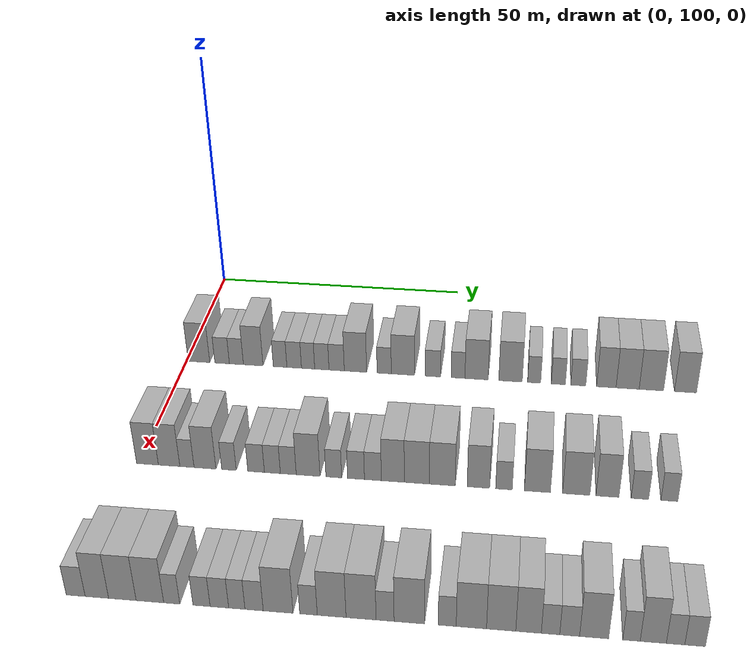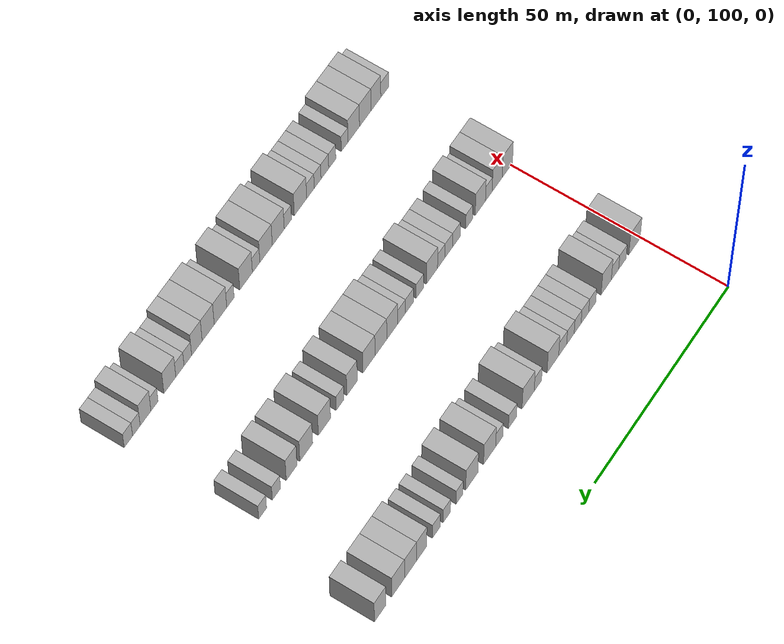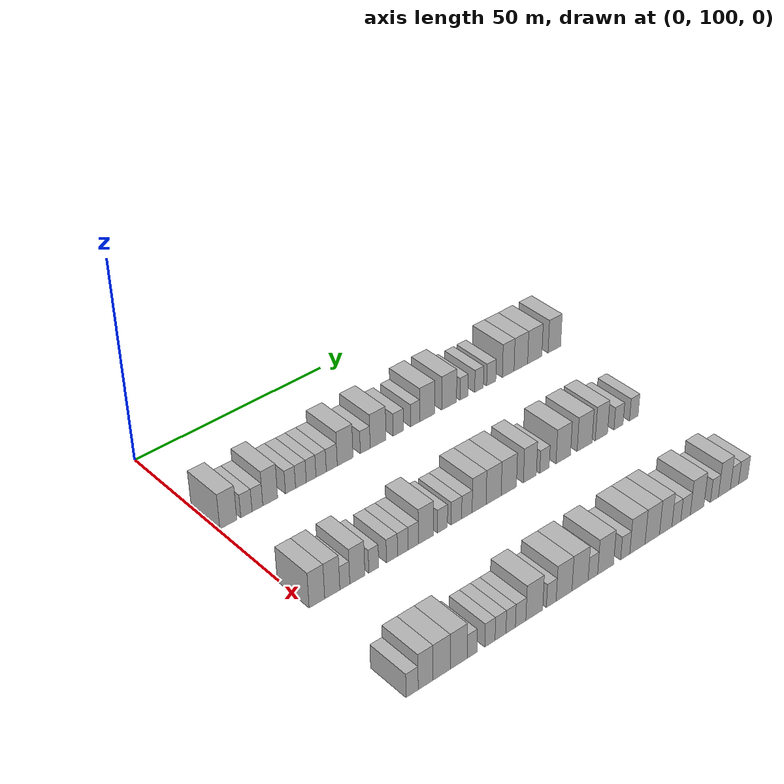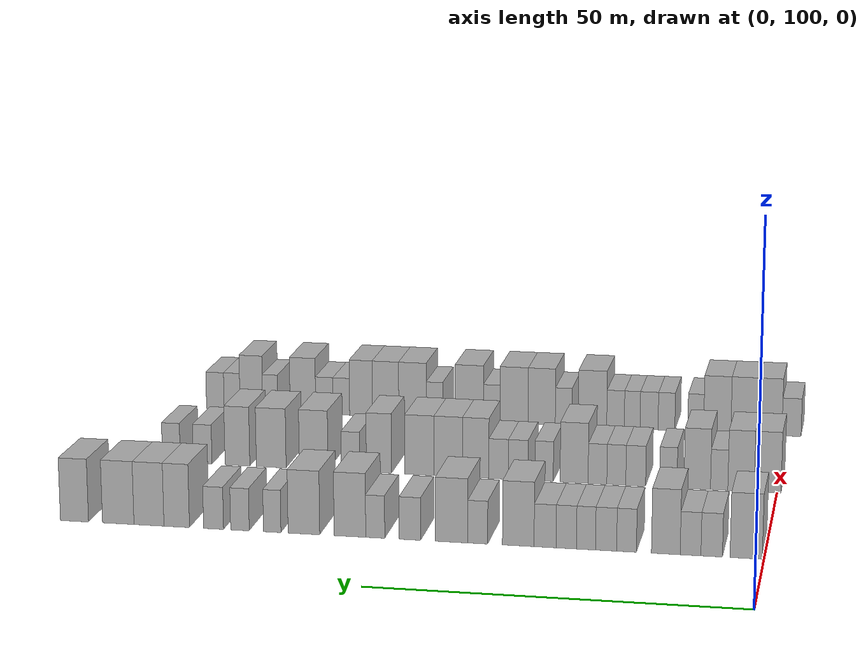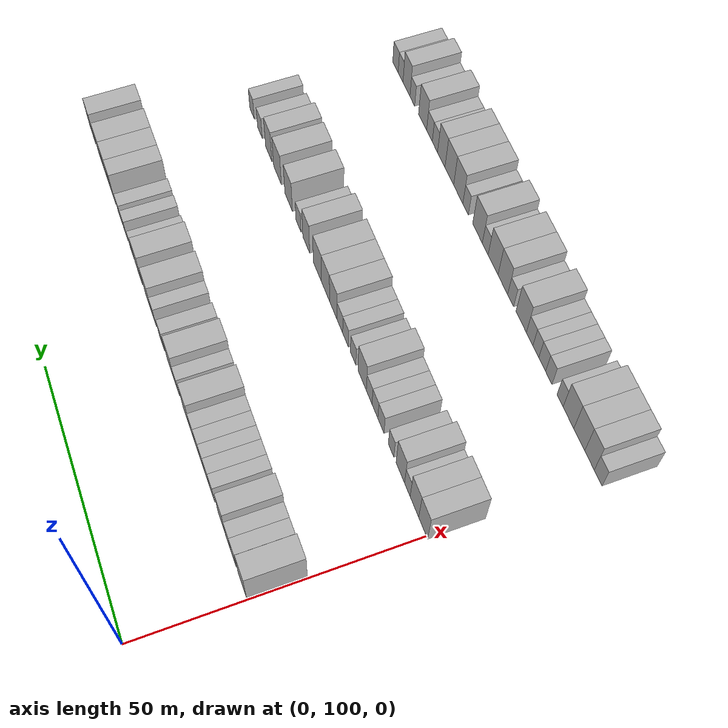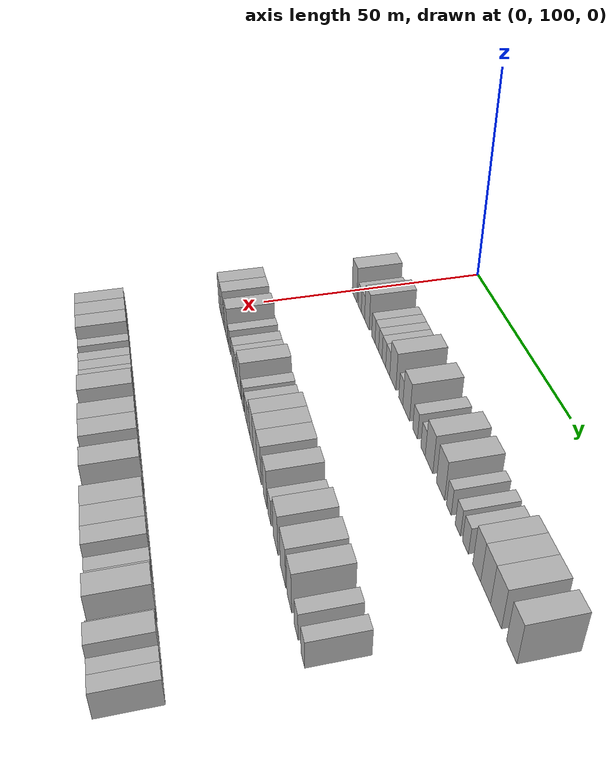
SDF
<sdf version="1.6">
 <world name="default">
  <model name="building_96">
   <static>1</static>
   <pose>25.0000 102.4165 0 0.000000 0.000000 0.000000</pose>
   <link name="link">
    <pose>0 0 4.50 0 0 0</pose>
    <collision name="collision"><geometry><box><size>10.0000 4.2398 9.0000</size></box></geometry></collision>
    <visual name="visual">
     <cast_shadows>0</cast_shadows>
     <geometry><box><size>10.0000 4.2398 9.0000</size></box></geometry>
     <material>
      <script>
       <uri>model://HANNAS_wall/materials/scripts</uri>
       <uri>model://HANNAS_wall/materials/textures</uri>
       <name>vrc/HANNAS_wall</name>
      </script>
     </material>
    </visual>
   </link>
  </model>
  <model name="building_97">
   <static>1</static>
   <pose>25.0000 106.9569 0 0.000000 0.000000 0.000000</pose>
   <link name="link">
    <pose>0 0 3.00 0 0 0</pose>
    <collision name="collision"><geometry><box><size>10.0000 2.8409 6.0000</size></box></geometry></collision>
    <visual name="visual">
     <cast_shadows>0</cast_shadows>
     <geometry><box><size>10.0000 2.8409 6.0000</size></box></geometry>
     <material>
      <script>
       <uri>model://HANNAS_wall/materials/scripts</uri>
       <uri>model://HANNAS_wall/materials/textures</uri>
       <name>vrc/HANNAS_wall</name>
      </script>
     </material>
    </visual>
   </link>
  </model>
  <model name="building_98">
   <static>1</static>
   <pose>25.0000 109.7510 0 0.000000 0.000000 0.000000</pose>
   <link name="link">
    <pose>0 0 3.00 0 0 0</pose>
    <collision name="collision"><geometry><box><size>10.0000 2.7475 6.0000</size></box></geometry></collision>
    <visual name="visual">
     <cast_shadows>0</cast_shadows>
     <geometry><box><size>10.0000 2.7475 6.0000</size></box></geometry>
     <material>
      <script>
       <uri>model://HANNAS_wall/materials/scripts</uri>
       <uri>model://HANNAS_wall/materials/textures</uri>
       <name>vrc/HANNAS_wall</name>
      </script>
     </material>
    </visual>
   </link>
  </model>
  <model name="building_99">
   <static>1</static>
   <pose>25.0000 113.0351 0 0.000000 0.000000 0.000000</pose>
   <link name="link">
    <pose>0 0 4.50 0 0 0</pose>
    <collision name="collision"><geometry><box><size>10.0000 3.8206 9.0000</size></box></geometry></collision>
    <visual name="visual">
     <cast_shadows>0</cast_shadows>
     <geometry><box><size>10.0000 3.8206 9.0000</size></box></geometry>
     <material>
      <script>
       <uri>model://HANNAS_wall/materials/scripts</uri>
       <uri>model://HANNAS_wall/materials/textures</uri>
       <name>vrc/HANNAS_wall</name>
      </script>
     </material>
    </visual>
   </link>
  </model>
  <model name="building_100">
   <static>1</static>
   <pose>25.0000 118.2645 0 0.000000 0.000000 0.000000</pose>
   <link name="link">
    <pose>0 0 3.00 0 0 0</pose>
    <collision name="collision"><geometry><box><size>10.0000 2.6382 6.0000</size></box></geometry></collision>
    <visual name="visual">
     <cast_shadows>0</cast_shadows>
     <geometry><box><size>10.0000 2.6382 6.0000</size></box></geometry>
     <material>
      <script>
       <uri>model://HANNAS_wall/materials/scripts</uri>
       <uri>model://HANNAS_wall/materials/textures</uri>
       <name>vrc/HANNAS_wall</name>
      </script>
     </material>
    </visual>
   </link>
  </model>
  <model name="building_101">
   <static>1</static>
   <pose>25.0000 120.9968 0 0.000000 0.000000 0.000000</pose>
   <link name="link">
    <pose>0 0 3.00 0 0 0</pose>
    <collision name="collision"><geometry><box><size>10.0000 2.8262 6.0000</size></box></geometry></collision>
    <visual name="visual">
     <cast_shadows>0</cast_shadows>
     <geometry><box><size>10.0000 2.8262 6.0000</size></box></geometry>
     <material>
      <script>
       <uri>model://HANNAS_wall/materials/scripts</uri>
       <uri>model://HANNAS_wall/materials/textures</uri>
       <name>vrc/HANNAS_wall</name>
      </script>
     </material>
    </visual>
   </link>
  </model>
  <model name="building_102">
   <static>1</static>
   <pose>25.0000 123.6886 0 0.000000 0.000000 0.000000</pose>
   <link name="link">
    <pose>0 0 3.00 0 0 0</pose>
    <collision name="collision"><geometry><box><size>10.0000 2.5574 6.0000</size></box></geometry></collision>
    <visual name="visual">
     <cast_shadows>0</cast_shadows>
     <geometry><box><size>10.0000 2.5574 6.0000</size></box></geometry>
     <material>
      <script>
       <uri>model://HANNAS_wall/materials/scripts</uri>
       <uri>model://HANNAS_wall/materials/textures</uri>
       <name>vrc/HANNAS_wall</name>
      </script>
     </material>
    </visual>
   </link>
  </model>
  <model name="building_103">
   <static>1</static>
   <pose>25.0000 126.3470 0 0.000000 0.000000 0.000000</pose>
   <link name="link">
    <pose>0 0 3.00 0 0 0</pose>
    <collision name="collision"><geometry><box><size>10.0000 2.7595 6.0000</size></box></geometry></collision>
    <visual name="visual">
     <cast_shadows>0</cast_shadows>
     <geometry><box><size>10.0000 2.7595 6.0000</size></box></geometry>
     <material>
      <script>
       <uri>model://HANNAS_wall/materials/scripts</uri>
       <uri>model://HANNAS_wall/materials/textures</uri>
       <name>vrc/HANNAS_wall</name>
      </script>
     </material>
    </visual>
   </link>
  </model>
  <model name="building_104">
   <static>1</static>
   <pose>25.0000 129.2031 0 0.000000 0.000000 0.000000</pose>
   <link name="link">
    <pose>0 0 3.00 0 0 0</pose>
    <collision name="collision"><geometry><box><size>10.0000 2.9528 6.0000</size></box></geometry></collision>
    <visual name="visual">
     <cast_shadows>0</cast_shadows>
     <geometry><box><size>10.0000 2.9528 6.0000</size></box></geometry>
     <material>
      <script>
       <uri>model://HANNAS_wall/materials/scripts</uri>
       <uri>model://HANNAS_wall/materials/textures</uri>
       <name>vrc/HANNAS_wall</name>
      </script>
     </material>
    </visual>
   </link>
  </model>
  <model name="building_105">
   <static>1</static>
   <pose>25.0000 132.8228 0 0.000000 0.000000 0.000000</pose>
   <link name="link">
    <pose>0 0 4.50 0 0 0</pose>
    <collision name="collision"><geometry><box><size>10.0000 4.2867 9.0000</size></box></geometry></collision>
    <visual name="visual">
     <cast_shadows>0</cast_shadows>
     <geometry><box><size>10.0000 4.2867 9.0000</size></box></geometry>
     <material>
      <script>
       <uri>model://HANNAS_wall/materials/scripts</uri>
       <uri>model://HANNAS_wall/materials/textures</uri>
       <name>vrc/HANNAS_wall</name>
      </script>
     </material>
    </visual>
   </link>
  </model>
  <model name="building_106">
   <static>1</static>
   <pose>25.0000 138.3240 0 0.000000 0.000000 0.000000</pose>
   <link name="link">
    <pose>0 0 3.00 0 0 0</pose>
    <collision name="collision"><geometry><box><size>10.0000 2.7156 6.0000</size></box></geometry></collision>
    <visual name="visual">
     <cast_shadows>0</cast_shadows>
     <geometry><box><size>10.0000 2.7156 6.0000</size></box></geometry>
     <material>
      <script>
       <uri>model://HANNAS_wall/materials/scripts</uri>
       <uri>model://HANNAS_wall/materials/textures</uri>
       <name>vrc/HANNAS_wall</name>
      </script>
     </material>
    </visual>
   </link>
  </model>
  <model name="building_107">
   <static>1</static>
   <pose>25.0000 141.8943 0 0.000000 0.000000 0.000000</pose>
   <link name="link">
    <pose>0 0 4.50 0 0 0</pose>
    <collision name="collision"><geometry><box><size>10.0000 4.4249 9.0000</size></box></geometry></collision>
    <visual name="visual">
     <cast_shadows>0</cast_shadows>
     <geometry><box><size>10.0000 4.4249 9.0000</size></box></geometry>
     <material>
      <script>
       <uri>model://HANNAS_wall/materials/scripts</uri>
       <uri>model://HANNAS_wall/materials/textures</uri>
       <name>vrc/HANNAS_wall</name>
      </script>
     </material>
    </visual>
   </link>
  </model>
  <model name="building_108">
   <static>1</static>
   <pose>25.0000 147.5792 0 0.000000 0.000000 0.000000</pose>
   <link name="link">
    <pose>0 0 3.00 0 0 0</pose>
    <collision name="collision"><geometry><box><size>10.0000 2.9450 6.0000</size></box></geometry></collision>
    <visual name="visual">
     <cast_shadows>0</cast_shadows>
     <geometry><box><size>10.0000 2.9450 6.0000</size></box></geometry>
     <material>
      <script>
       <uri>model://HANNAS_wall/materials/scripts</uri>
       <uri>model://HANNAS_wall/materials/textures</uri>
       <name>vrc/HANNAS_wall</name>
      </script>
     </material>
    </visual>
   </link>
  </model>
  <model name="building_109">
   <static>1</static>
   <pose>25.0000 152.3627 0 0.000000 0.000000 0.000000</pose>
   <link name="link">
    <pose>0 0 3.00 0 0 0</pose>
    <collision name="collision"><geometry><box><size>10.0000 2.6221 6.0000</size></box></geometry></collision>
    <visual name="visual">
     <cast_shadows>0</cast_shadows>
     <geometry><box><size>10.0000 2.6221 6.0000</size></box></geometry>
     <material>
      <script>
       <uri>model://HANNAS_wall/materials/scripts</uri>
       <uri>model://HANNAS_wall/materials/textures</uri>
       <name>vrc/HANNAS_wall</name>
      </script>
     </material>
    </visual>
   </link>
  </model>
  <model name="building_110">
   <static>1</static>
   <pose>25.0000 155.8600 0 0.000000 0.000000 0.000000</pose>
   <link name="link">
    <pose>0 0 4.50 0 0 0</pose>
    <collision name="collision"><geometry><box><size>10.0000 4.3724 9.0000</size></box></geometry></collision>
    <visual name="visual">
     <cast_shadows>0</cast_shadows>
     <geometry><box><size>10.0000 4.3724 9.0000</size></box></geometry>
     <material>
      <script>
       <uri>model://HANNAS_wall/materials/scripts</uri>
       <uri>model://HANNAS_wall/materials/textures</uri>
       <name>vrc/HANNAS_wall</name>
      </script>
     </material>
    </visual>
   </link>
  </model>
  <model name="building_111">
   <static>1</static>
   <pose>25.0000 162.2475 0 0.000000 0.000000 0.000000</pose>
   <link name="link">
    <pose>0 0 4.50 0 0 0</pose>
    <collision name="collision"><geometry><box><size>10.0000 4.4027 9.0000</size></box></geometry></collision>
    <visual name="visual">
     <cast_shadows>0</cast_shadows>
     <geometry><box><size>10.0000 4.4027 9.0000</size></box></geometry>
     <material>
      <script>
       <uri>model://HANNAS_wall/materials/scripts</uri>
       <uri>model://HANNAS_wall/materials/textures</uri>
       <name>vrc/HANNAS_wall</name>
      </script>
     </material>
    </visual>
   </link>
  </model>
  <model name="building_112">
   <static>1</static>
   <pose>25.0000 166.6666 0 0.000000 0.000000 0.000000</pose>
   <link name="link">
    <pose>0 0 3.00 0 0 0</pose>
    <collision name="collision"><geometry><box><size>10.0000 2.4354 6.0000</size></box></geometry></collision>
    <visual name="visual">
     <cast_shadows>0</cast_shadows>
     <geometry><box><size>10.0000 2.4354 6.0000</size></box></geometry>
     <material>
      <script>
       <uri>model://HANNAS_wall/materials/scripts</uri>
       <uri>model://HANNAS_wall/materials/textures</uri>
       <name>vrc/HANNAS_wall</name>
      </script>
     </material>
    </visual>
   </link>
  </model>
  <model name="building_113">
   <static>1</static>
   <pose>25.0000 171.1855 0 0.000000 0.000000 0.000000</pose>
   <link name="link">
    <pose>0 0 3.00 0 0 0</pose>
    <collision name="collision"><geometry><box><size>10.0000 2.6024 6.0000</size></box></geometry></collision>
    <visual name="visual">
     <cast_shadows>0</cast_shadows>
     <geometry><box><size>10.0000 2.6024 6.0000</size></box></geometry>
     <material>
      <script>
       <uri>model://HANNAS_wall/materials/scripts</uri>
       <uri>model://HANNAS_wall/materials/textures</uri>
       <name>vrc/HANNAS_wall</name>
      </script>
     </material>
    </visual>
   </link>
  </model>
  <model name="building_114">
   <static>1</static>
   <pose>25.0000 174.8876 0 0.000000 0.000000 0.000000</pose>
   <link name="link">
    <pose>0 0 3.00 0 0 0</pose>
    <collision name="collision"><geometry><box><size>10.0000 2.8020 6.0000</size></box></geometry></collision>
    <visual name="visual">
     <cast_shadows>0</cast_shadows>
     <geometry><box><size>10.0000 2.8020 6.0000</size></box></geometry>
     <material>
      <script>
       <uri>model://HANNAS_wall/materials/scripts</uri>
       <uri>model://HANNAS_wall/materials/textures</uri>
       <name>vrc/HANNAS_wall</name>
      </script>
     </material>
    </visual>
   </link>
  </model>
  <model name="building_115">
   <static>1</static>
   <pose>25.0000 180.0931 0 0.000000 0.000000 0.000000</pose>
   <link name="link">
    <pose>0 0 4.50 0 0 0</pose>
    <collision name="collision"><geometry><box><size>10.0000 3.6089 9.0000</size></box></geometry></collision>
    <visual name="visual">
     <cast_shadows>0</cast_shadows>
     <geometry><box><size>10.0000 3.6089 9.0000</size></box></geometry>
     <material>
      <script>
       <uri>model://HANNAS_wall/materials/scripts</uri>
       <uri>model://HANNAS_wall/materials/textures</uri>
       <name>vrc/HANNAS_wall</name>
      </script>
     </material>
    </visual>
   </link>
  </model>
  <model name="building_116">
   <static>1</static>
   <pose>25.0000 184.0258 0 0.000000 0.000000 0.000000</pose>
   <link name="link">
    <pose>0 0 4.50 0 0 0</pose>
    <collision name="collision"><geometry><box><size>10.0000 4.2566 9.0000</size></box></geometry></collision>
    <visual name="visual">
     <cast_shadows>0</cast_shadows>
     <geometry><box><size>10.0000 4.2566 9.0000</size></box></geometry>
     <material>
      <script>
       <uri>model://HANNAS_wall/materials/scripts</uri>
       <uri>model://HANNAS_wall/materials/textures</uri>
       <name>vrc/HANNAS_wall</name>
      </script>
     </material>
    </visual>
   </link>
  </model>
  <model name="building_117">
   <static>1</static>
   <pose>25.0000 188.3985 0 0.000000 0.000000 0.000000</pose>
   <link name="link">
    <pose>0 0 4.50 0 0 0</pose>
    <collision name="collision"><geometry><box><size>10.0000 4.4887 9.0000</size></box></geometry></collision>
    <visual name="visual">
     <cast_shadows>0</cast_shadows>
     <geometry><box><size>10.0000 4.4887 9.0000</size></box></geometry>
     <material>
      <script>
       <uri>model://HANNAS_wall/materials/scripts</uri>
       <uri>model://HANNAS_wall/materials/textures</uri>
       <name>vrc/HANNAS_wall</name>
      </script>
     </material>
    </visual>
   </link>
  </model>
  <model name="building_118">
   <static>1</static>
   <pose>25.0000 194.6544 0 0.000000 0.000000 0.000000</pose>
   <link name="link">
    <pose>0 0 4.50 0 0 0</pose>
    <collision name="collision"><geometry><box><size>10.0000 4.0231 9.0000</size></box></geometry></collision>
    <visual name="visual">
     <cast_shadows>0</cast_shadows>
     <geometry><box><size>10.0000 4.0231 9.0000</size></box></geometry>
     <material>
      <script>
       <uri>model://HANNAS_wall/materials/scripts</uri>
       <uri>model://HANNAS_wall/materials/textures</uri>
       <name>vrc/HANNAS_wall</name>
      </script>
     </material>
    </visual>
   </link>
  </model>
  <model name="building_231">
   <static>1</static>
   <pose>55.0000 101.4425 0 0.000000 0.000000 0.000000</pose>
   <link name="link">
    <pose>0 0 4.50 0 0 0</pose>
    <collision name="collision"><geometry><box><size>10.0000 3.8210 9.0000</size></box></geometry></collision>
    <visual name="visual">
     <cast_shadows>0</cast_shadows>
     <geometry><box><size>10.0000 3.8210 9.0000</size></box></geometry>
     <material>
      <script>
       <uri>model://HANNAS_wall/materials/scripts</uri>
       <uri>model://HANNAS_wall/materials/textures</uri>
       <name>vrc/HANNAS_wall</name>
      </script>
     </material>
    </visual>
   </link>
  </model>
  <model name="building_232">
   <static>1</static>
   <pose>55.0000 105.2255 0 0.000000 0.000000 0.000000</pose>
   <link name="link">
    <pose>0 0 4.50 0 0 0</pose>
    <collision name="collision"><geometry><box><size>10.0000 3.7451 9.0000</size></box></geometry></collision>
    <visual name="visual">
     <cast_shadows>0</cast_shadows>
     <geometry><box><size>10.0000 3.7451 9.0000</size></box></geometry>
     <material>
      <script>
       <uri>model://HANNAS_wall/materials/scripts</uri>
       <uri>model://HANNAS_wall/materials/textures</uri>
       <name>vrc/HANNAS_wall</name>
      </script>
     </material>
    </visual>
   </link>
  </model>
  <model name="building_233">
   <static>1</static>
   <pose>55.0000 108.3368 0 0.000000 0.000000 0.000000</pose>
   <link name="link">
    <pose>0 0 3.00 0 0 0</pose>
    <collision name="collision"><geometry><box><size>10.0000 2.4776 6.0000</size></box></geometry></collision>
    <visual name="visual">
     <cast_shadows>0</cast_shadows>
     <geometry><box><size>10.0000 2.4776 6.0000</size></box></geometry>
     <material>
      <script>
       <uri>model://HANNAS_wall/materials/scripts</uri>
       <uri>model://HANNAS_wall/materials/textures</uri>
       <name>vrc/HANNAS_wall</name>
      </script>
     </material>
    </visual>
   </link>
  </model>
  <model name="building_234">
   <static>1</static>
   <pose>55.0000 111.4778 0 0.000000 0.000000 0.000000</pose>
   <link name="link">
    <pose>0 0 4.50 0 0 0</pose>
    <collision name="collision"><geometry><box><size>10.0000 3.8044 9.0000</size></box></geometry></collision>
    <visual name="visual">
     <cast_shadows>0</cast_shadows>
     <geometry><box><size>10.0000 3.8044 9.0000</size></box></geometry>
     <material>
      <script>
       <uri>model://HANNAS_wall/materials/scripts</uri>
       <uri>model://HANNAS_wall/materials/textures</uri>
       <name>vrc/HANNAS_wall</name>
      </script>
     </material>
    </visual>
   </link>
  </model>
  <model name="building_235">
   <static>1</static>
   <pose>55.0000 115.6367 0 0.000000 0.000000 0.000000</pose>
   <link name="link">
    <pose>0 0 3.00 0 0 0</pose>
    <collision name="collision"><geometry><box><size>10.0000 2.5134 6.0000</size></box></geometry></collision>
    <visual name="visual">
     <cast_shadows>0</cast_shadows>
     <geometry><box><size>10.0000 2.5134 6.0000</size></box></geometry>
     <material>
      <script>
       <uri>model://HANNAS_wall/materials/scripts</uri>
       <uri>model://HANNAS_wall/materials/textures</uri>
       <name>vrc/HANNAS_wall</name>
      </script>
     </material>
    </visual>
   </link>
  </model>
  <model name="building_236">
   <static>1</static>
   <pose>55.0000 120.3255 0 0.000000 0.000000 0.000000</pose>
   <link name="link">
    <pose>0 0 3.00 0 0 0</pose>
    <collision name="collision"><geometry><box><size>10.0000 2.8641 6.0000</size></box></geometry></collision>
    <visual name="visual">
     <cast_shadows>0</cast_shadows>
     <geometry><box><size>10.0000 2.8641 6.0000</size></box></geometry>
     <material>
      <script>
       <uri>model://HANNAS_wall/materials/scripts</uri>
       <uri>model://HANNAS_wall/materials/textures</uri>
       <name>vrc/HANNAS_wall</name>
      </script>
     </material>
    </visual>
   </link>
  </model>
  <model name="building_237">
   <static>1</static>
   <pose>55.0000 123.1298 0 0.000000 0.000000 0.000000</pose>
   <link name="link">
    <pose>0 0 3.00 0 0 0</pose>
    <collision name="collision"><geometry><box><size>10.0000 2.7447 6.0000</size></box></geometry></collision>
    <visual name="visual">
     <cast_shadows>0</cast_shadows>
     <geometry><box><size>10.0000 2.7447 6.0000</size></box></geometry>
     <material>
      <script>
       <uri>model://HANNAS_wall/materials/scripts</uri>
       <uri>model://HANNAS_wall/materials/textures</uri>
       <name>vrc/HANNAS_wall</name>
      </script>
     </material>
    </visual>
   </link>
  </model>
  <model name="building_238">
   <static>1</static>
   <pose>55.0000 125.8608 0 0.000000 0.000000 0.000000</pose>
   <link name="link">
    <pose>0 0 3.00 0 0 0</pose>
    <collision name="collision"><geometry><box><size>10.0000 2.7173 6.0000</size></box></geometry></collision>
    <visual name="visual">
     <cast_shadows>0</cast_shadows>
     <geometry><box><size>10.0000 2.7173 6.0000</size></box></geometry>
     <material>
      <script>
       <uri>model://HANNAS_wall/materials/scripts</uri>
       <uri>model://HANNAS_wall/materials/textures</uri>
       <name>vrc/HANNAS_wall</name>
      </script>
     </material>
    </visual>
   </link>
  </model>
  <model name="building_239">
   <static>1</static>
   <pose>55.0000 129.2563 0 0.000000 0.000000 0.000000</pose>
   <link name="link">
    <pose>0 0 4.50 0 0 0</pose>
    <collision name="collision"><geometry><box><size>10.0000 4.0737 9.0000</size></box></geometry></collision>
    <visual name="visual">
     <cast_shadows>0</cast_shadows>
     <geometry><box><size>10.0000 4.0737 9.0000</size></box></geometry>
     <material>
      <script>
       <uri>model://HANNAS_wall/materials/scripts</uri>
       <uri>model://HANNAS_wall/materials/textures</uri>
       <name>vrc/HANNAS_wall</name>
      </script>
     </material>
    </visual>
   </link>
  </model>
  <model name="building_240">
   <static>1</static>
   <pose>55.0000 133.6387 0 0.000000 0.000000 0.000000</pose>
   <link name="link">
    <pose>0 0 3.00 0 0 0</pose>
    <collision name="collision"><geometry><box><size>10.0000 2.6911 6.0000</size></box></geometry></collision>
    <visual name="visual">
     <cast_shadows>0</cast_shadows>
     <geometry><box><size>10.0000 2.6911 6.0000</size></box></geometry>
     <material>
      <script>
       <uri>model://HANNAS_wall/materials/scripts</uri>
       <uri>model://HANNAS_wall/materials/textures</uri>
       <name>vrc/HANNAS_wall</name>
      </script>
     </material>
    </visual>
   </link>
  </model>
  <model name="building_241">
   <static>1</static>
   <pose>55.0000 137.4219 0 0.000000 0.000000 0.000000</pose>
   <link name="link">
    <pose>0 0 3.00 0 0 0</pose>
    <collision name="collision"><geometry><box><size>10.0000 2.8752 6.0000</size></box></geometry></collision>
    <visual name="visual">
     <cast_shadows>0</cast_shadows>
     <geometry><box><size>10.0000 2.8752 6.0000</size></box></geometry>
     <material>
      <script>
       <uri>model://HANNAS_wall/materials/scripts</uri>
       <uri>model://HANNAS_wall/materials/textures</uri>
       <name>vrc/HANNAS_wall</name>
      </script>
     </material>
    </visual>
   </link>
  </model>
  <model name="building_242">
   <static>1</static>
   <pose>55.0000 140.2895 0 0.000000 0.000000 0.000000</pose>
   <link name="link">
    <pose>0 0 3.00 0 0 0</pose>
    <collision name="collision"><geometry><box><size>10.0000 2.8600 6.0000</size></box></geometry></collision>
    <visual name="visual">
     <cast_shadows>0</cast_shadows>
     <geometry><box><size>10.0000 2.8600 6.0000</size></box></geometry>
     <material>
      <script>
       <uri>model://HANNAS_wall/materials/scripts</uri>
       <uri>model://HANNAS_wall/materials/textures</uri>
       <name>vrc/HANNAS_wall</name>
      </script>
     </material>
    </visual>
   </link>
  </model>
  <model name="building_243">
   <static>1</static>
   <pose>55.0000 143.6606 0 0.000000 0.000000 0.000000</pose>
   <link name="link">
    <pose>0 0 4.50 0 0 0</pose>
    <collision name="collision"><geometry><box><size>10.0000 3.8822 9.0000</size></box></geometry></collision>
    <visual name="visual">
     <cast_shadows>0</cast_shadows>
     <geometry><box><size>10.0000 3.8822 9.0000</size></box></geometry>
     <material>
      <script>
       <uri>model://HANNAS_wall/materials/scripts</uri>
       <uri>model://HANNAS_wall/materials/textures</uri>
       <name>vrc/HANNAS_wall</name>
      </script>
     </material>
    </visual>
   </link>
  </model>
  <model name="building_244">
   <static>1</static>
   <pose>55.0000 147.7088 0 0.000000 0.000000 0.000000</pose>
   <link name="link">
    <pose>0 0 4.50 0 0 0</pose>
    <collision name="collision"><geometry><box><size>10.0000 4.2141 9.0000</size></box></geometry></collision>
    <visual name="visual">
     <cast_shadows>0</cast_shadows>
     <geometry><box><size>10.0000 4.2141 9.0000</size></box></geometry>
     <material>
      <script>
       <uri>model://HANNAS_wall/materials/scripts</uri>
       <uri>model://HANNAS_wall/materials/textures</uri>
       <name>vrc/HANNAS_wall</name>
      </script>
     </material>
    </visual>
   </link>
  </model>
  <model name="building_245">
   <static>1</static>
   <pose>55.0000 151.9775 0 0.000000 0.000000 0.000000</pose>
   <link name="link">
    <pose>0 0 4.50 0 0 0</pose>
    <collision name="collision"><geometry><box><size>10.0000 4.3234 9.0000</size></box></geometry></collision>
    <visual name="visual">
     <cast_shadows>0</cast_shadows>
     <geometry><box><size>10.0000 4.3234 9.0000</size></box></geometry>
     <material>
      <script>
       <uri>model://HANNAS_wall/materials/scripts</uri>
       <uri>model://HANNAS_wall/materials/textures</uri>
       <name>vrc/HANNAS_wall</name>
      </script>
     </material>
    </visual>
   </link>
  </model>
  <model name="building_246">
   <static>1</static>
   <pose>55.0000 158.0118 0 0.000000 0.000000 0.000000</pose>
   <link name="link">
    <pose>0 0 4.50 0 0 0</pose>
    <collision name="collision"><geometry><box><size>10.0000 3.7451 9.0000</size></box></geometry></collision>
    <visual name="visual">
     <cast_shadows>0</cast_shadows>
     <geometry><box><size>10.0000 3.7451 9.0000</size></box></geometry>
     <material>
      <script>
       <uri>model://HANNAS_wall/materials/scripts</uri>
       <uri>model://HANNAS_wall/materials/textures</uri>
       <name>vrc/HANNAS_wall</name>
      </script>
     </material>
    </visual>
   </link>
  </model>
  <model name="building_247">
   <static>1</static>
   <pose>55.0000 162.2652 0 0.000000 0.000000 0.000000</pose>
   <link name="link">
    <pose>0 0 3.00 0 0 0</pose>
    <collision name="collision"><geometry><box><size>10.0000 2.7618 6.0000</size></box></geometry></collision>
    <visual name="visual">
     <cast_shadows>0</cast_shadows>
     <geometry><box><size>10.0000 2.7618 6.0000</size></box></geometry>
     <material>
      <script>
       <uri>model://HANNAS_wall/materials/scripts</uri>
       <uri>model://HANNAS_wall/materials/textures</uri>
       <name>vrc/HANNAS_wall</name>
      </script>
     </material>
    </visual>
   </link>
  </model>
  <model name="building_248">
   <static>1</static>
   <pose>55.0000 167.7974 0 0.000000 0.000000 0.000000</pose>
   <link name="link">
    <pose>0 0 4.50 0 0 0</pose>
    <collision name="collision"><geometry><box><size>10.0000 4.3025 9.0000</size></box></geometry></collision>
    <visual name="visual">
     <cast_shadows>0</cast_shadows>
     <geometry><box><size>10.0000 4.3025 9.0000</size></box></geometry>
     <material>
      <script>
       <uri>model://HANNAS_wall/materials/scripts</uri>
       <uri>model://HANNAS_wall/materials/textures</uri>
       <name>vrc/HANNAS_wall</name>
      </script>
     </material>
    </visual>
   </link>
  </model>
  <model name="building_249">
   <static>1</static>
   <pose>55.0000 174.1973 0 0.000000 0.000000 0.000000</pose>
   <link name="link">
    <pose>0 0 4.50 0 0 0</pose>
    <collision name="collision"><geometry><box><size>10.0000 4.4973 9.0000</size></box></geometry></collision>
    <visual name="visual">
     <cast_shadows>0</cast_shadows>
     <geometry><box><size>10.0000 4.4973 9.0000</size></box></geometry>
     <material>
      <script>
       <uri>model://HANNAS_wall/materials/scripts</uri>
       <uri>model://HANNAS_wall/materials/textures</uri>
       <name>vrc/HANNAS_wall</name>
      </script>
     </material>
    </visual>
   </link>
  </model>
  <model name="building_250">
   <static>1</static>
   <pose>55.0000 179.3239 0 0.000000 0.000000 0.000000</pose>
   <link name="link">
    <pose>0 0 4.50 0 0 0</pose>
    <collision name="collision"><geometry><box><size>10.0000 3.7558 9.0000</size></box></geometry></collision>
    <visual name="visual">
     <cast_shadows>0</cast_shadows>
     <geometry><box><size>10.0000 3.7558 9.0000</size></box></geometry>
     <material>
      <script>
       <uri>model://HANNAS_wall/materials/scripts</uri>
       <uri>model://HANNAS_wall/materials/textures</uri>
       <name>vrc/HANNAS_wall</name>
      </script>
     </material>
    </visual>
   </link>
  </model>
  <model name="building_251">
   <static>1</static>
   <pose>55.0000 184.6219 0 0.000000 0.000000 0.000000</pose>
   <link name="link">
    <pose>0 0 3.00 0 0 0</pose>
    <collision name="collision"><geometry><box><size>10.0000 2.8403 6.0000</size></box></geometry></collision>
    <visual name="visual">
     <cast_shadows>0</cast_shadows>
     <geometry><box><size>10.0000 2.8403 6.0000</size></box></geometry>
     <material>
      <script>
       <uri>model://HANNAS_wall/materials/scripts</uri>
       <uri>model://HANNAS_wall/materials/textures</uri>
       <name>vrc/HANNAS_wall</name>
      </script>
     </material>
    </visual>
   </link>
  </model>
  <model name="building_252">
   <static>1</static>
   <pose>55.0000 189.4058 0 0.000000 0.000000 0.000000</pose>
   <link name="link">
    <pose>0 0 3.00 0 0 0</pose>
    <collision name="collision"><geometry><box><size>10.0000 2.7276 6.0000</size></box></geometry></collision>
    <visual name="visual">
     <cast_shadows>0</cast_shadows>
     <geometry><box><size>10.0000 2.7276 6.0000</size></box></geometry>
     <material>
      <script>
       <uri>model://HANNAS_wall/materials/scripts</uri>
       <uri>model://HANNAS_wall/materials/textures</uri>
       <name>vrc/HANNAS_wall</name>
      </script>
     </material>
    </visual>
   </link>
  </model>
  <model name="building_376">
   <static>1</static>
   <pose>85.0000 99.6282 0 0.000000 0.000000 0.000000</pose>
   <link name="link">
    <pose>0 0 3.00 0 0 0</pose>
    <collision name="collision"><geometry><box><size>10.0000 2.9144 6.0000</size></box></geometry></collision>
    <visual name="visual">
     <cast_shadows>0</cast_shadows>
     <geometry><box><size>10.0000 2.9144 6.0000</size></box></geometry>
     <material>
      <script>
       <uri>model://HANNAS_wall/materials/scripts</uri>
       <uri>model://HANNAS_wall/materials/textures</uri>
       <name>vrc/HANNAS_wall</name>
      </script>
     </material>
    </visual>
   </link>
  </model>
  <model name="building_377">
   <static>1</static>
   <pose>85.0000 102.8900 0 0.000000 0.000000 0.000000</pose>
   <link name="link">
    <pose>0 0 4.50 0 0 0</pose>
    <collision name="collision"><geometry><box><size>10.0000 3.6093 9.0000</size></box></geometry></collision>
    <visual name="visual">
     <cast_shadows>0</cast_shadows>
     <geometry><box><size>10.0000 3.6093 9.0000</size></box></geometry>
     <material>
      <script>
       <uri>model://HANNAS_wall/materials/scripts</uri>
       <uri>model://HANNAS_wall/materials/textures</uri>
       <name>vrc/HANNAS_wall</name>
      </script>
     </material>
    </visual>
   </link>
  </model>
  <model name="building_378">
   <static>1</static>
   <pose>85.0000 106.7986 0 0.000000 0.000000 0.000000</pose>
   <link name="link">
    <pose>0 0 4.50 0 0 0</pose>
    <collision name="collision"><geometry><box><size>10.0000 4.2079 9.0000</size></box></geometry></collision>
    <visual name="visual">
     <cast_shadows>0</cast_shadows>
     <geometry><box><size>10.0000 4.2079 9.0000</size></box></geometry>
     <material>
      <script>
       <uri>model://HANNAS_wall/materials/scripts</uri>
       <uri>model://HANNAS_wall/materials/textures</uri>
       <name>vrc/HANNAS_wall</name>
      </script>
     </material>
    </visual>
   </link>
  </model>
  <model name="building_379">
   <static>1</static>
   <pose>85.0000 111.0031 0 0.000000 0.000000 0.000000</pose>
   <link name="link">
    <pose>0 0 4.50 0 0 0</pose>
    <collision name="collision"><geometry><box><size>10.0000 4.2011 9.0000</size></box></geometry></collision>
    <visual name="visual">
     <cast_shadows>0</cast_shadows>
     <geometry><box><size>10.0000 4.2011 9.0000</size></box></geometry>
     <material>
      <script>
       <uri>model://HANNAS_wall/materials/scripts</uri>
       <uri>model://HANNAS_wall/materials/textures</uri>
       <name>vrc/HANNAS_wall</name>
      </script>
     </material>
    </visual>
   </link>
  </model>
  <model name="building_380">
   <static>1</static>
   <pose>85.0000 114.3252 0 0.000000 0.000000 0.000000</pose>
   <link name="link">
    <pose>0 0 3.00 0 0 0</pose>
    <collision name="collision"><geometry><box><size>10.0000 2.4431 6.0000</size></box></geometry></collision>
    <visual name="visual">
     <cast_shadows>0</cast_shadows>
     <geometry><box><size>10.0000 2.4431 6.0000</size></box></geometry>
     <material>
      <script>
       <uri>model://HANNAS_wall/materials/scripts</uri>
       <uri>model://HANNAS_wall/materials/textures</uri>
       <name>vrc/HANNAS_wall</name>
      </script>
     </material>
    </visual>
   </link>
  </model>
  <model name="building_381">
   <static>1</static>
   <pose>85.0000 118.8434 0 0.000000 0.000000 0.000000</pose>
   <link name="link">
    <pose>0 0 3.00 0 0 0</pose>
    <collision name="collision"><geometry><box><size>10.0000 2.5931 6.0000</size></box></geometry></collision>
    <visual name="visual">
     <cast_shadows>0</cast_shadows>
     <geometry><box><size>10.0000 2.5931 6.0000</size></box></geometry>
     <material>
      <script>
       <uri>model://HANNAS_wall/materials/scripts</uri>
       <uri>model://HANNAS_wall/materials/textures</uri>
       <name>vrc/HANNAS_wall</name>
      </script>
     </material>
    </visual>
   </link>
  </model>
  <model name="building_382">
   <static>1</static>
   <pose>85.0000 121.5364 0 0.000000 0.000000 0.000000</pose>
   <link name="link">
    <pose>0 0 3.00 0 0 0</pose>
    <collision name="collision"><geometry><box><size>10.0000 2.7929 6.0000</size></box></geometry></collision>
    <visual name="visual">
     <cast_shadows>0</cast_shadows>
     <geometry><box><size>10.0000 2.7929 6.0000</size></box></geometry>
     <material>
      <script>
       <uri>model://HANNAS_wall/materials/scripts</uri>
       <uri>model://HANNAS_wall/materials/textures</uri>
       <name>vrc/HANNAS_wall</name>
      </script>
     </material>
    </visual>
   </link>
  </model>
  <model name="building_383">
   <static>1</static>
   <pose>85.0000 124.1580 0 0.000000 0.000000 0.000000</pose>
   <link name="link">
    <pose>0 0 3.00 0 0 0</pose>
    <collision name="collision"><geometry><box><size>10.0000 2.4504 6.0000</size></box></geometry></collision>
    <visual name="visual">
     <cast_shadows>0</cast_shadows>
     <geometry><box><size>10.0000 2.4504 6.0000</size></box></geometry>
     <material>
      <script>
       <uri>model://HANNAS_wall/materials/scripts</uri>
       <uri>model://HANNAS_wall/materials/textures</uri>
       <name>vrc/HANNAS_wall</name>
      </script>
     </material>
    </visual>
   </link>
  </model>
  <model name="building_384">
   <static>1</static>
   <pose>85.0000 126.7524 0 0.000000 0.000000 0.000000</pose>
   <link name="link">
    <pose>0 0 3.00 0 0 0</pose>
    <collision name="collision"><geometry><box><size>10.0000 2.7384 6.0000</size></box></geometry></collision>
    <visual name="visual">
     <cast_shadows>0</cast_shadows>
     <geometry><box><size>10.0000 2.7384 6.0000</size></box></geometry>
     <material>
      <script>
       <uri>model://HANNAS_wall/materials/scripts</uri>
       <uri>model://HANNAS_wall/materials/textures</uri>
       <name>vrc/HANNAS_wall</name>
      </script>
     </material>
    </visual>
   </link>
  </model>
  <model name="building_385">
   <static>1</static>
   <pose>85.0000 130.3451 0 0.000000 0.000000 0.000000</pose>
   <link name="link">
    <pose>0 0 4.50 0 0 0</pose>
    <collision name="collision"><geometry><box><size>10.0000 4.4468 9.0000</size></box></geometry></collision>
    <visual name="visual">
     <cast_shadows>0</cast_shadows>
     <geometry><box><size>10.0000 4.4468 9.0000</size></box></geometry>
     <material>
      <script>
       <uri>model://HANNAS_wall/materials/scripts</uri>
       <uri>model://HANNAS_wall/materials/textures</uri>
       <name>vrc/HANNAS_wall</name>
      </script>
     </material>
    </visual>
   </link>
  </model>
  <model name="building_386">
   <static>1</static>
   <pose>85.0000 134.8703 0 0.000000 0.000000 0.000000</pose>
   <link name="link">
    <pose>0 0 3.00 0 0 0</pose>
    <collision name="collision"><geometry><box><size>10.0000 2.6036 6.0000</size></box></geometry></collision>
    <visual name="visual">
     <cast_shadows>0</cast_shadows>
     <geometry><box><size>10.0000 2.6036 6.0000</size></box></geometry>
     <material>
      <script>
       <uri>model://HANNAS_wall/materials/scripts</uri>
       <uri>model://HANNAS_wall/materials/textures</uri>
       <name>vrc/HANNAS_wall</name>
      </script>
     </material>
    </visual>
   </link>
  </model>
  <model name="building_387">
   <static>1</static>
   <pose>85.0000 138.3069 0 0.000000 0.000000 0.000000</pose>
   <link name="link">
    <pose>0 0 4.50 0 0 0</pose>
    <collision name="collision"><geometry><box><size>10.0000 4.2696 9.0000</size></box></geometry></collision>
    <visual name="visual">
     <cast_shadows>0</cast_shadows>
     <geometry><box><size>10.0000 4.2696 9.0000</size></box></geometry>
     <material>
      <script>
       <uri>model://HANNAS_wall/materials/scripts</uri>
       <uri>model://HANNAS_wall/materials/textures</uri>
       <name>vrc/HANNAS_wall</name>
      </script>
     </material>
    </visual>
   </link>
  </model>
  <model name="building_388">
   <static>1</static>
   <pose>85.0000 142.6567 0 0.000000 0.000000 0.000000</pose>
   <link name="link">
    <pose>0 0 4.50 0 0 0</pose>
    <collision name="collision"><geometry><box><size>10.0000 4.4301 9.0000</size></box></geometry></collision>
    <visual name="visual">
     <cast_shadows>0</cast_shadows>
     <geometry><box><size>10.0000 4.4301 9.0000</size></box></geometry>
     <material>
      <script>
       <uri>model://HANNAS_wall/materials/scripts</uri>
       <uri>model://HANNAS_wall/materials/textures</uri>
       <name>vrc/HANNAS_wall</name>
      </script>
     </material>
    </visual>
   </link>
  </model>
  <model name="building_389">
   <static>1</static>
   <pose>85.0000 146.1940 0 0.000000 0.000000 0.000000</pose>
   <link name="link">
    <pose>0 0 3.00 0 0 0</pose>
    <collision name="collision"><geometry><box><size>10.0000 2.6443 6.0000</size></box></geometry></collision>
    <visual name="visual">
     <cast_shadows>0</cast_shadows>
     <geometry><box><size>10.0000 2.6443 6.0000</size></box></geometry>
     <material>
      <script>
       <uri>model://HANNAS_wall/materials/scripts</uri>
       <uri>model://HANNAS_wall/materials/textures</uri>
       <name>vrc/HANNAS_wall</name>
      </script>
     </material>
    </visual>
   </link>
  </model>
  <model name="building_390">
   <static>1</static>
   <pose>85.0000 149.7500 0 0.000000 0.000000 0.000000</pose>
   <link name="link">
    <pose>0 0 4.50 0 0 0</pose>
    <collision name="collision"><geometry><box><size>10.0000 4.4677 9.0000</size></box></geometry></collision>
    <visual name="visual">
     <cast_shadows>0</cast_shadows>
     <geometry><box><size>10.0000 4.4677 9.0000</size></box></geometry>
     <material>
      <script>
       <uri>model://HANNAS_wall/materials/scripts</uri>
       <uri>model://HANNAS_wall/materials/textures</uri>
       <name>vrc/HANNAS_wall</name>
      </script>
     </material>
    </visual>
   </link>
  </model>
  <model name="building_391">
   <static>1</static>
   <pose>85.0000 155.2880 0 0.000000 0.000000 0.000000</pose>
   <link name="link">
    <pose>0 0 3.00 0 0 0</pose>
    <collision name="collision"><geometry><box><size>10.0000 2.6084 6.0000</size></box></geometry></collision>
    <visual name="visual">
     <cast_shadows>0</cast_shadows>
     <geometry><box><size>10.0000 2.6084 6.0000</size></box></geometry>
     <material>
      <script>
       <uri>model://HANNAS_wall/materials/scripts</uri>
       <uri>model://HANNAS_wall/materials/textures</uri>
       <name>vrc/HANNAS_wall</name>
      </script>
     </material>
    </visual>
   </link>
  </model>
  <model name="building_392">
   <static>1</static>
   <pose>85.0000 158.7910 0 0.000000 0.000000 0.000000</pose>
   <link name="link">
    <pose>0 0 4.50 0 0 0</pose>
    <collision name="collision"><geometry><box><size>10.0000 4.3976 9.0000</size></box></geometry></collision>
    <visual name="visual">
     <cast_shadows>0</cast_shadows>
     <geometry><box><size>10.0000 4.3976 9.0000</size></box></geometry>
     <material>
      <script>
       <uri>model://HANNAS_wall/materials/scripts</uri>
       <uri>model://HANNAS_wall/materials/textures</uri>
       <name>vrc/HANNAS_wall</name>
      </script>
     </material>
    </visual>
   </link>
  </model>
  <model name="building_393">
   <static>1</static>
   <pose>85.0000 163.1023 0 0.000000 0.000000 0.000000</pose>
   <link name="link">
    <pose>0 0 4.50 0 0 0</pose>
    <collision name="collision"><geometry><box><size>10.0000 4.2249 9.0000</size></box></geometry></collision>
    <visual name="visual">
     <cast_shadows>0</cast_shadows>
     <geometry><box><size>10.0000 4.2249 9.0000</size></box></geometry>
     <material>
      <script>
       <uri>model://HANNAS_wall/materials/scripts</uri>
       <uri>model://HANNAS_wall/materials/textures</uri>
       <name>vrc/HANNAS_wall</name>
      </script>
     </material>
    </visual>
   </link>
  </model>
  <model name="building_394">
   <static>1</static>
   <pose>85.0000 167.0520 0 0.000000 0.000000 0.000000</pose>
   <link name="link">
    <pose>0 0 4.50 0 0 0</pose>
    <collision name="collision"><geometry><box><size>10.0000 3.6745 9.0000</size></box></geometry></collision>
    <visual name="visual">
     <cast_shadows>0</cast_shadows>
     <geometry><box><size>10.0000 3.6745 9.0000</size></box></geometry>
     <material>
      <script>
       <uri>model://HANNAS_wall/materials/scripts</uri>
       <uri>model://HANNAS_wall/materials/textures</uri>
       <name>vrc/HANNAS_wall</name>
      </script>
     </material>
    </visual>
   </link>
  </model>
  <model name="building_395">
   <static>1</static>
   <pose>85.0000 170.2114 0 0.000000 0.000000 0.000000</pose>
   <link name="link">
    <pose>0 0 3.00 0 0 0</pose>
    <collision name="collision"><geometry><box><size>10.0000 2.6442 6.0000</size></box></geometry></collision>
    <visual name="visual">
     <cast_shadows>0</cast_shadows>
     <geometry><box><size>10.0000 2.6442 6.0000</size></box></geometry>
     <material>
      <script>
       <uri>model://HANNAS_wall/materials/scripts</uri>
       <uri>model://HANNAS_wall/materials/textures</uri>
       <name>vrc/HANNAS_wall</name>
      </script>
     </material>
    </visual>
   </link>
  </model>
  <model name="building_396">
   <static>1</static>
   <pose>85.0000 172.9554 0 0.000000 0.000000 0.000000</pose>
   <link name="link">
    <pose>0 0 3.00 0 0 0</pose>
    <collision name="collision"><geometry><box><size>10.0000 2.8437 6.0000</size></box></geometry></collision>
    <visual name="visual">
     <cast_shadows>0</cast_shadows>
     <geometry><box><size>10.0000 2.8437 6.0000</size></box></geometry>
     <material>
      <script>
       <uri>model://HANNAS_wall/materials/scripts</uri>
       <uri>model://HANNAS_wall/materials/textures</uri>
       <name>vrc/HANNAS_wall</name>
      </script>
     </material>
    </visual>
   </link>
  </model>
  <model name="building_397">
   <static>1</static>
   <pose>85.0000 176.4459 0 0.000000 0.000000 0.000000</pose>
   <link name="link">
    <pose>0 0 4.50 0 0 0</pose>
    <collision name="collision"><geometry><box><size>10.0000 4.1375 9.0000</size></box></geometry></collision>
    <visual name="visual">
     <cast_shadows>0</cast_shadows>
     <geometry><box><size>10.0000 4.1375 9.0000</size></box></geometry>
     <material>
      <script>
       <uri>model://HANNAS_wall/materials/scripts</uri>
       <uri>model://HANNAS_wall/materials/textures</uri>
       <name>vrc/HANNAS_wall</name>
      </script>
     </material>
    </visual>
   </link>
  </model>
  <model name="building_398">
   <static>1</static>
   <pose>85.0000 181.7488 0 0.000000 0.000000 0.000000</pose>
   <link name="link">
    <pose>0 0 3.00 0 0 0</pose>
    <collision name="collision"><geometry><box><size>10.0000 2.4682 6.0000</size></box></geometry></collision>
    <visual name="visual">
     <cast_shadows>0</cast_shadows>
     <geometry><box><size>10.0000 2.4682 6.0000</size></box></geometry>
     <material>
      <script>
       <uri>model://HANNAS_wall/materials/scripts</uri>
       <uri>model://HANNAS_wall/materials/textures</uri>
       <name>vrc/HANNAS_wall</name>
      </script>
     </material>
    </visual>
   </link>
  </model>
  <model name="building_399">
   <static>1</static>
   <pose>85.0000 184.8332 0 0.000000 0.000000 0.000000</pose>
   <link name="link">
    <pose>0 0 4.50 0 0 0</pose>
    <collision name="collision"><geometry><box><size>10.0000 3.7008 9.0000</size></box></geometry></collision>
    <visual name="visual">
     <cast_shadows>0</cast_shadows>
     <geometry><box><size>10.0000 3.7008 9.0000</size></box></geometry>
     <material>
      <script>
       <uri>model://HANNAS_wall/materials/scripts</uri>
       <uri>model://HANNAS_wall/materials/textures</uri>
       <name>vrc/HANNAS_wall</name>
      </script>
     </material>
    </visual>
   </link>
  </model>
  <model name="building_400">
   <static>1</static>
   <pose>85.0000 187.9817 0 0.000000 0.000000 0.000000</pose>
   <link name="link">
    <pose>0 0 3.00 0 0 0</pose>
    <collision name="collision"><geometry><box><size>10.0000 2.5962 6.0000</size></box></geometry></collision>
    <visual name="visual">
     <cast_shadows>0</cast_shadows>
     <geometry><box><size>10.0000 2.5962 6.0000</size></box></geometry>
     <material>
      <script>
       <uri>model://HANNAS_wall/materials/scripts</uri>
       <uri>model://HANNAS_wall/materials/textures</uri>
       <name>vrc/HANNAS_wall</name>
      </script>
     </material>
    </visual>
   </link>
  </model>
  <model name="building_401">
   <static>1</static>
   <pose>85.0000 190.7261 0 0.000000 0.000000 0.000000</pose>
   <link name="link">
    <pose>0 0 3.00 0 0 0</pose>
    <collision name="collision"><geometry><box><size>10.0000 2.8925 6.0000</size></box></geometry></collision>
    <visual name="visual">
     <cast_shadows>0</cast_shadows>
     <geometry><box><size>10.0000 2.8925 6.0000</size></box></geometry>
     <material>
      <script>
       <uri>model://HANNAS_wall/materials/scripts</uri>
       <uri>model://HANNAS_wall/materials/textures</uri>
       <name>vrc/HANNAS_wall</name>
      </script>
     </material>
    </visual>
   </link>
  </model>
 </world>
</sdf>
